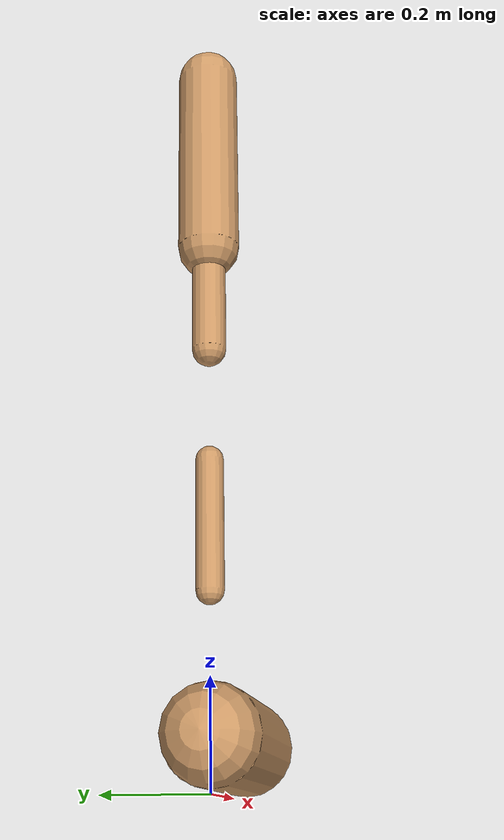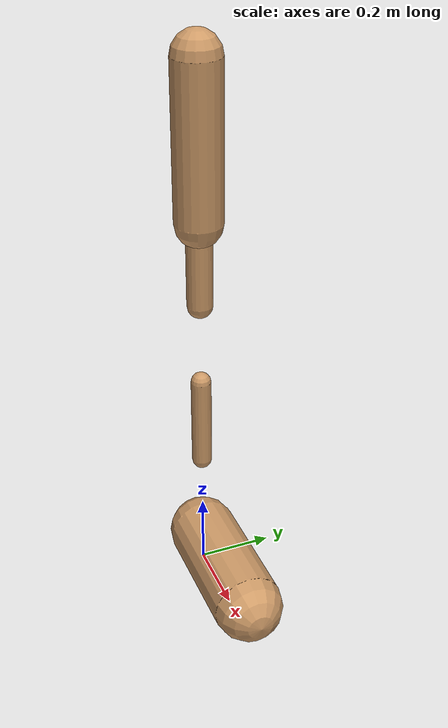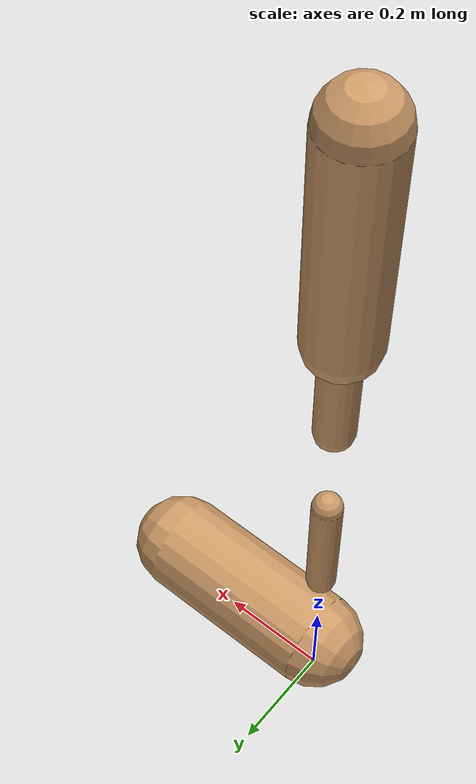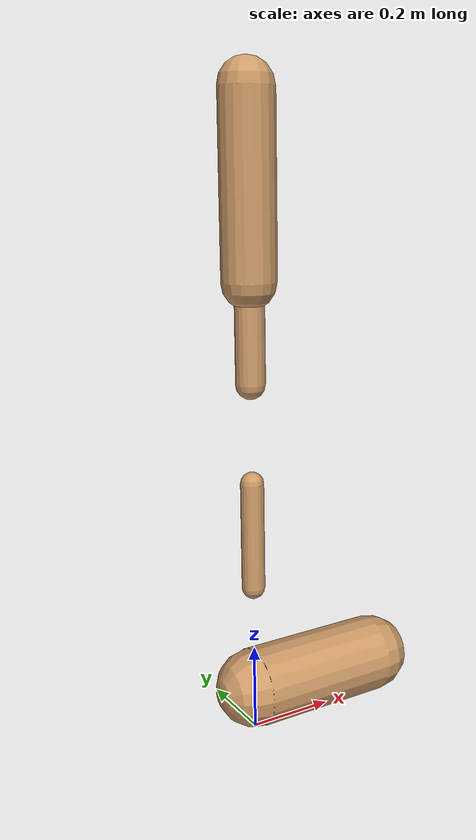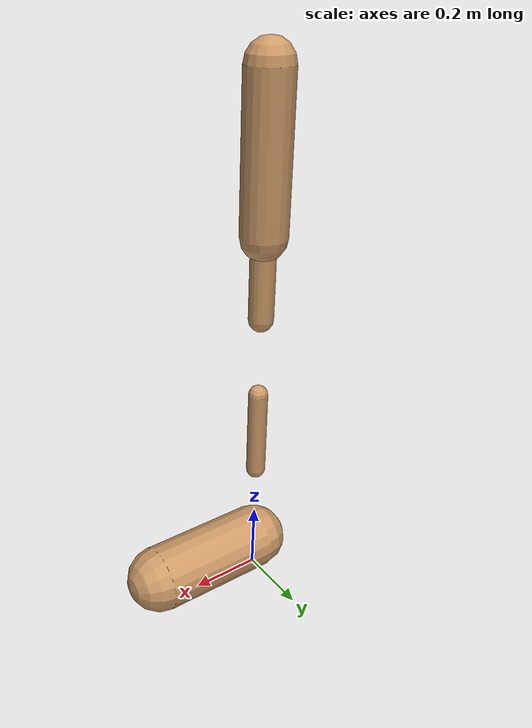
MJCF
<mujoco model="walker2d">
  <compiler angle="degree" coordinate="global" inertiafromgeom="true" />
  <default>
    <joint armature="0.01" damping=".1" limited="true" />
    <geom conaffinity="0" condim="3" contype="1" density="1000" friction="0.8 .1 .1" rgba="0.8 0.6 .4 1" />
  </default>
  <option integrator="RK4" timestep="0.002" />
  <worldbody>

    <body name="torso" pos="0 0 -0.479166150422482">
      <joint armature="0" axis="1 0 0" damping="0" limited="false" name="ignorex" pos="0 0 0" stiffness="0" type="slide" />
      <joint armature="0" axis="0 0 1" damping="0" limited="false" name="ignorez" pos="0 0 0" ref="1.25" stiffness="0" type="slide" />
      <joint armature="0" axis="0 1 0" damping="0" limited="false" name="ignorey" pos="0 0 0" stiffness="0" type="hinge" />
      <geom fromto="0 0 1.45 0 0 1.05" name="torso_geom" size="0.06133337781361464" type="capsule" />
      <body name="thigh">
        <joint axis="0 -1 0" name="thigh_joint" pos="0 0 1.05" range="-150 0" type="hinge" />
        <geom fromto="0.0 0.0 1.05 0.0 0.0 0.8269734396738073" name="thigh_geom" size="0.0334417437286922" type="capsule" />
        <body name="leg" pos="0.0 0.0 0.22697343967380734">
          <joint axis="0 -1 0" name="leg_joint" pos="0 0 0.6" range="-150 0" type="hinge" />
          <geom fromto="0.0 0.0 0.6 0.0 0.0 0.35219271074867475" name="leg_geom" size="0.02675339498295376" type="capsule" />
          <body name="foot" pos="0.0 0.0 0.2521927107486748">
            <joint axis="0 -1 0" name="foot_joint" pos="0 0 0.1" range="-45 45" type="hinge" />
            <geom fromto="-0.0 0.0 0.09999999999999999 0.32809195809305525 0.0 0.09999999999999999" name="foot_geom" size="0.0918204637626037" type="capsule" />
          </body>
        </body>
      </body>

      <body name="thigh_left">
        <joint axis="0 -1 0" name="thigh_left_joint" pos="0 0 1.05" range="-150 0" type="hinge" />
        <geom fromto="0.0 0.0 1.05 0.0 0.0 0.8269734396738073" name="thigh_left_geom" rgba=".7 .3 .6 1" size="0.0334417437286922" type="capsule" />
        <body name="leg_left" pos="0.0 0.0 0.22697343967380734">
          <joint axis="0 -1 0" name="leg_left_joint" pos="0 0 0.6" range="-150 0" type="hinge" />
          <geom fromto="0.0 0.0 0.6 0.0 0.0 0.35219271074867475" name="leg_left_geom" rgba=".7 .3 .6 1" size="0.02675339498295376" type="capsule" />
          <body name="foot_left" pos="0.0 0.0 0.2521927107486748">
            <joint axis="0 -1 0" name="foot_left_joint" pos="0 0 0.1" range="-45 45" type="hinge" />
            <geom fromto="-0.0 0.0 0.09999999999999999 0.32809195809305525 0.0 0.09999999999999999" name="foot_left_geom" rgba=".7 .3 .6 1" size="0.0918204637626037" type="capsule" />
          </body>
        </body>
      </body>
    </body>
  </worldbody>
  <actuator>

    <motor ctrllimited="true" ctrlrange="-1.0 1.0" gear="100" joint="thigh_joint" />
    <motor ctrllimited="true" ctrlrange="-1.0 1.0" gear="100" joint="leg_joint" />
    <motor ctrllimited="true" ctrlrange="-1.0 1.0" gear="100" joint="foot_joint" />
    <motor ctrllimited="true" ctrlrange="-1.0 1.0" gear="100" joint="thigh_left_joint" />
    <motor ctrllimited="true" ctrlrange="-1.0 1.0" gear="100" joint="leg_left_joint" />
    <motor ctrllimited="true" ctrlrange="-1.0 1.0" gear="100" joint="foot_left_joint" />

  </actuator>
</mujoco>
